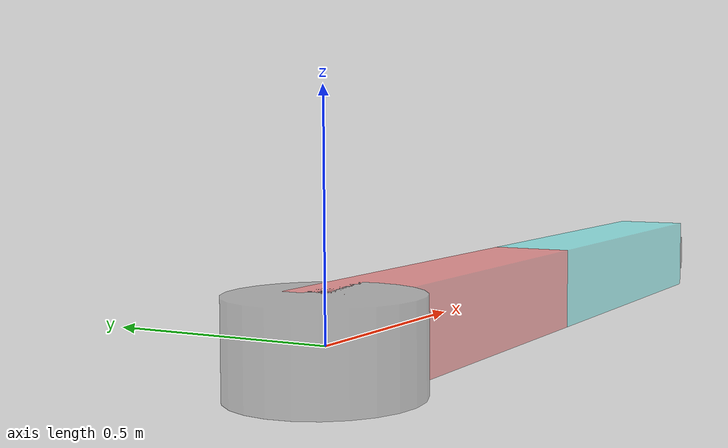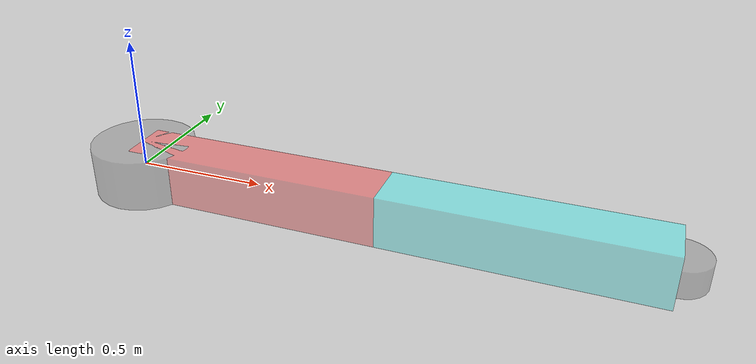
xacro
<?xml version="1.0"?>
<robot xmlns:xacro="http://www.ros.org/wiki/xacro" name="pma_planar_2dof">
    <xacro:arg name="initial_positions_file" default="initial_positions.yaml" />

    <!-- Import pma_planar_2dof urdf file -->
    <xacro:include filename="$(find pma_description)/urdf/pma_planar_2dof.urdf" />

    <!-- Import control_xacro -->
    <xacro:include filename="pma_planar_2dof.ros2_control.xacro" />

    <xacro:pma_planar_2dof_ros2_control name="FakeSystem" initial_positions_file="$(arg initial_positions_file)"/>

</robot>

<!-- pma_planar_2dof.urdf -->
<robot name="pma_planar_2dof" xmlns:xacro="http://www.ros.org/wiki/xacro">

  <material name="grey">
    <color rgba="0.4 0.4 0.4 0.333"/>
  </material>
  <material name="red">
    <color rgba="1.0 0.0 0.0 0.333"/>
  </material>
  <material name="cyan">
    <color rgba="0.0 1.0 1.0 0.333"/>
  </material>

  <link name="pma_planar_2dof_base">
    <visual>
      <origin rpy="0 0 0" xyz="0 0 0"/>
      <geometry>
        <cylinder length="0.2" radius="0.2"/>
      </geometry>
      <material name="grey"/>
    </visual>
    <collision>
      <origin rpy="0 0 0" xyz="0 0 0"/>
      <geometry>
        <cylinder length="0.2" radius="0.2"/>
      </geometry>
    </collision>
  </link>

  <joint name="pma_planar_2dof_shoulder" type="continuous">
    <parent link="pma_planar_2dof_base"/>
    <child link="pma_planar_2dof_upperarm"/>
    <origin rpy="0 0 0" xyz="0 0 0"/>
    <axis xyz="0 0 1"/>
  </joint>

  <link name="pma_planar_2dof_upperarm">
    <visual>
      <origin rpy="0 0 0" xyz="0.5 0 0"/>
      <geometry>
        <box size="1.0 0.2 0.2"/>
      </geometry>
      <material name="red"/>
    </visual>
    <collision>
      <origin rpy="0 0 0" xyz="0 0 0"/>
      <geometry>
        <box size="1.0 0.2 0.2"/>
      </geometry>
    </collision>
  </link>

  <joint name="pma_planar_2dof_elbow" type="continuous">
    <parent link="pma_planar_2dof_upperarm"/>
    <child link="pma_planar_2dof_forearm"/>
    <origin rpy="0 0 0" xyz="1.0 0 0"/>
    <axis xyz="0 0 1"/>
  </joint>

  <link name="pma_planar_2dof_forearm">
    <visual>
      <origin rpy="0 0 0" xyz="0.5 0 0"/>
      <geometry>
        <box size="1.0 0.2 0.2"/>
      </geometry>
      <material name="cyan"/>
    </visual>
    <collision>
      <origin rpy="0 0 0" xyz="0.5 0 0"/>
      <geometry>
        <box size="1.0 0.2 0.2"/>
      </geometry>
    </collision>
  </link>

  <joint name="pma_planar_2dof_flangejoint" type="fixed">
    <parent link="pma_planar_2dof_forearm"/>
    <child link="pma_planar_2dof_flange"/>
    <origin rpy="0 0 0" xyz="1.0 0 0"/>
    <axis xyz="0 0 1"/>
  </joint>

  <link name="pma_planar_2dof_flange">
    <visual>
      <origin rpy="0 0 0" xyz="0 0 0"/>
      <geometry>
        <cylinder length="0.1" radius="0.1"/>
      </geometry>
      <material name="grey"/>
    </visual>
    <collision>
      <origin rpy="0 0 0" xyz="0 0 0"/>
      <geometry>
        <cylinder length="0.1" radius="0.1"/>
      </geometry>
    </collision>
  </link>
</robot>
